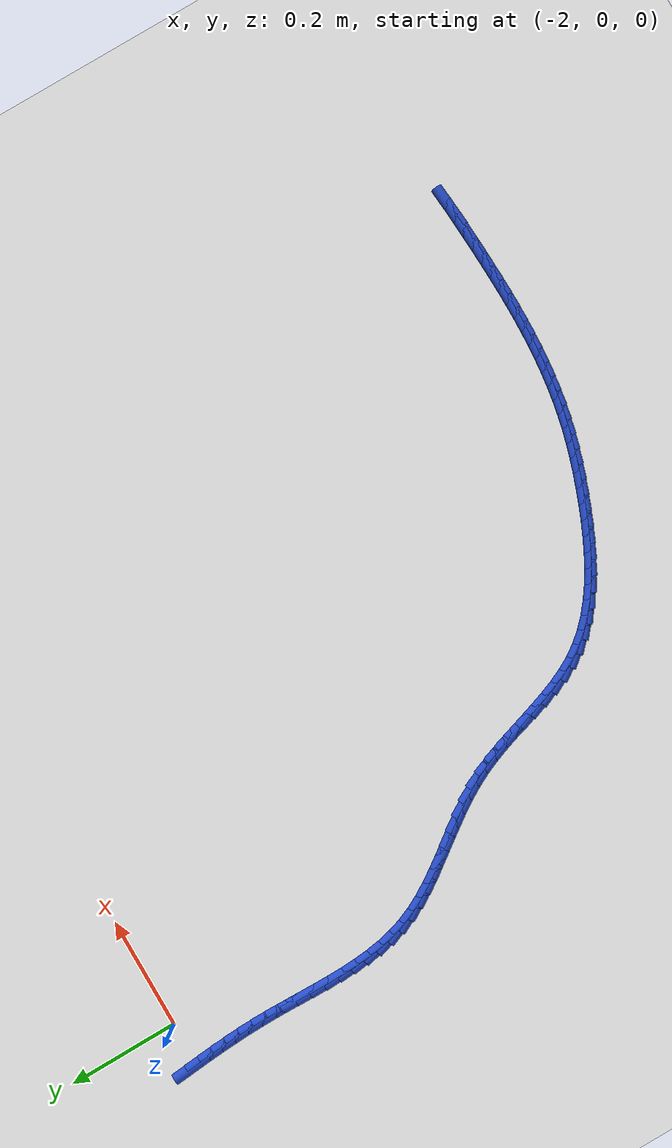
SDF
<sdf version="1.6">
 <world name="default">
  <model name="ground_plane">
   <static>1</static>
   <link name="link">
    <collision name="collision">
     <geometry><plane><normal>0 0 1</normal><size>100 100</size></plane></geometry>
     <surface><friction><ode><mu>100</mu><mu2>50</mu2></ode></friction></surface>
    </collision>
    <visual name="visual">
     <cast_shadows>0</cast_shadows>
     <geometry><plane><normal>0 0 1</normal><size>100 100</size></plane></geometry>
     <material>
      <script><uri>file://media/materials/scripts/gazebo.material</uri><name>Gazebo/WhiteGlow</name></script>
     </material>
    </visual>
   </link>
  </model>
  <model name="line">
   <link name="link_138">
    <pose>-2.076259799934996 0.004023379701810648 0.01 0 1.57 -1.4767754231613457</pose>
    <collision name="collision">
     <geometry><cylinder><radius>0.01</radius><length>0.08</length></cylinder></geometry>
    </collision>
    <visual name="visual">
     <material>
      <script><name>Gazebo/Blue</name><uri>file://media/materials/scripts/gazebo.material</uri></script>
     </material>
     <geometry><cylinder><radius>0.01</radius><length>0.08</length></cylinder></geometry>
    </visual>
   </link>
   <link name="link_139">
    <pose>-2.073760933154093 -0.022476037684811347 0.01 0 1.57 -1.4904226755646686</pose>
    <collision name="collision">
     <geometry><cylinder><radius>0.01</radius><length>0.08</length></cylinder></geometry>
    </collision>
    <visual name="visual">
     <material>
      <script><name>Gazebo/Blue</name><uri>file://media/materials/scripts/gazebo.material</uri></script>
     </material>
     <geometry><cylinder><radius>0.01</radius><length>0.08</length></cylinder></geometry>
    </visual>
   </link>
   <link name="link_140">
    <pose>-2.0716176636199 -0.04908491252600503 0.01 0 1.57 -1.506000891469629</pose>
    <collision name="collision">
     <geometry><cylinder><radius>0.01</radius><length>0.08</length></cylinder></geometry>
    </collision>
    <visual name="visual">
     <material>
      <script><name>Gazebo/Blue</name><uri>file://media/materials/scripts/gazebo.material</uri></script>
     </material>
     <geometry><cylinder><radius>0.01</radius><length>0.08</length></cylinder></geometry>
    </visual>
   </link>
   <link name="link_141">
    <pose>-2.069882461090363 -0.07582712754088738 0.01 0 1.57 -1.5234454125371815</pose>
    <collision name="collision">
     <geometry><cylinder><radius>0.01</radius><length>0.08</length></cylinder></geometry>
    </collision>
    <visual name="visual">
     <material>
      <script><name>Gazebo/Blue</name><uri>file://media/materials/scripts/gazebo.material</uri></script>
     </material>
     <geometry><cylinder><radius>0.01</radius><length>0.08</length></cylinder></geometry>
    </visual>
   </link>
   <link name="link_142">
    <pose>-2.0686077953234254 -0.10272656544857289 0.01 0 1.57 -1.5426780394721202</pose>
    <collision name="collision">
     <geometry><cylinder><radius>0.01</radius><length>0.08</length></cylinder></geometry>
    </collision>
    <visual name="visual">
     <material>
      <script><name>Gazebo/Blue</name><uri>file://media/materials/scripts/gazebo.material</uri></script>
     </material>
     <geometry><cylinder><radius>0.01</radius><length>0.08</length></cylinder></geometry>
    </visual>
   </link>
   <link name="link_143">
    <pose>-2.0678461360770344 -0.12980710896817943 0.01 0 1.57 -1.563581900552866</pose>
    <collision name="collision">
     <geometry><cylinder><radius>0.01</radius><length>0.08</length></cylinder></geometry>
    </collision>
    <visual name="visual">
     <material>
      <script><name>Gazebo/Blue</name><uri>file://media/materials/scripts/gazebo.material</uri></script>
     </material>
     <geometry><cylinder><radius>0.01</radius><length>0.08</length></cylinder></geometry>
    </visual>
   </link>
   <link name="link_144">
    <pose>-2.0676492850438253 -0.1570923859067369 0.01 0 1.57 1.559228311620795</pose>
    <collision name="collision">
     <geometry><cylinder><radius>0.01</radius><length>0.08</length></cylinder></geometry>
    </collision>
    <visual name="visual">
     <material>
      <script><name>Gazebo/Blue</name><uri>file://media/materials/scripts/gazebo.material</uri></script>
     </material>
     <geometry><cylinder><radius>0.01</radius><length>0.08</length></cylinder></geometry>
    </visual>
   </link>
   <link name="link_145">
    <pose>-2.0679671275487186 -0.18456713608620515 0.01 0 1.57 1.5500514270253254</pose>
    <collision name="collision">
     <geometry><cylinder><radius>0.01</radius><length>0.08</length></cylinder></geometry>
    </collision>
    <visual name="visual">
     <material>
      <script><name>Gazebo/Blue</name><uri>file://media/materials/scripts/gazebo.material</uri></script>
     </material>
     <geometry><cylinder><radius>0.01</radius><length>0.08</length></cylinder></geometry>
    </visual>
   </link>
   <link name="link_146">
    <pose>-2.068539118898556 -0.21213580604900603 0.01 0 1.57 1.5512184558446882</pose>
    <collision name="collision">
     <geometry><cylinder><radius>0.01</radius><length>0.08</length></cylinder></geometry>
    </collision>
    <visual name="visual">
     <material>
      <script><name>Gazebo/Blue</name><uri>file://media/materials/scripts/gazebo.material</uri></script>
     </material>
     <geometry><cylinder><radius>0.01</radius><length>0.08</length></cylinder></geometry>
    </visual>
   </link>
   <link name="link_147">
    <pose>-2.0690786973635564 -0.239692915079026 0.01 0 1.57 1.5627570208148083</pose>
    <collision name="collision">
     <geometry><cylinder><radius>0.01</radius><length>0.08</length></cylinder></geometry>
    </collision>
    <visual name="visual">
     <material>
      <script><name>Gazebo/Blue</name><uri>file://media/materials/scripts/gazebo.material</uri></script>
     </material>
     <geometry><cylinder><radius>0.01</radius><length>0.08</length></cylinder></geometry>
    </visual>
   </link>
   <link name="link_148">
    <pose>-2.0692993012139427 -0.2671329824601484 0.01 0 1.57 -1.556654462337523</pose>
    <collision name="collision">
     <geometry><cylinder><radius>0.01</radius><length>0.08</length></cylinder></geometry>
    </collision>
    <visual name="visual">
     <material>
      <script><name>Gazebo/Blue</name><uri>file://media/materials/scripts/gazebo.material</uri></script>
     </material>
     <geometry><cylinder><radius>0.01</radius><length>0.08</length></cylinder></geometry>
    </visual>
   </link>
   <link name="link_149">
    <pose>-2.068914368719938 -0.2943505274762596 0.01 0 1.57 -1.5233402648843988</pose>
    <collision name="collision">
     <geometry><cylinder><radius>0.01</radius><length>0.08</length></cylinder></geometry>
    </collision>
    <visual name="visual">
     <material>
      <script><name>Gazebo/Blue</name><uri>file://media/materials/scripts/gazebo.material</uri></script>
     </material>
     <geometry><cylinder><radius>0.01</radius><length>0.08</length></cylinder></geometry>
    </visual>
   </link>
   <link name="link_150">
    <pose>-2.0676373381517617 -0.32124006941124283 0.01 0 1.57 -1.4782400588052715</pose>
    <collision name="collision">
     <geometry><cylinder><radius>0.01</radius><length>0.08</length></cylinder></geometry>
    </collision>
    <visual name="visual">
     <material>
      <script><name>Gazebo/Blue</name><uri>file://media/materials/scripts/gazebo.material</uri></script>
     </material>
     <geometry><cylinder><radius>0.01</radius><length>0.08</length></cylinder></geometry>
    </visual>
   </link>
   <link name="link_151">
    <pose>-2.0651816477796383 -0.347696127548984 0.01 0 1.57 -1.4206482182835092</pose>
    <collision name="collision">
     <geometry><cylinder><radius>0.01</radius><length>0.08</length></cylinder></geometry>
    </collision>
    <visual name="visual">
     <material>
      <script><name>Gazebo/Blue</name><uri>file://media/materials/scripts/gazebo.material</uri></script>
     </material>
     <geometry><cylinder><radius>0.01</radius><length>0.08</length></cylinder></geometry>
    </visual>
   </link>
   <link name="link_152">
    <pose>-2.0612607358737867 -0.3736132211733683 0.01 0 1.57 -1.349996055068403</pose>
    <collision name="collision">
     <geometry><cylinder><radius>0.01</radius><length>0.08</length></cylinder></geometry>
    </collision>
    <visual name="visual">
     <material>
      <script><name>Gazebo/Blue</name><uri>file://media/materials/scripts/gazebo.material</uri></script>
     </material>
     <geometry><cylinder><radius>0.01</radius><length>0.08</length></cylinder></geometry>
    </visual>
   </link>
   <link name="link_153">
    <pose>-2.0555880407044316 -0.3988858695682795 0.01 0 1.57 -1.2661407544521237</pose>
    <collision name="collision">
     <geometry><cylinder><radius>0.01</radius><length>0.08</length></cylinder></geometry>
    </collision>
    <visual name="visual">
     <material>
      <script><name>Gazebo/Blue</name><uri>file://media/materials/scripts/gazebo.material</uri></script>
     </material>
     <geometry><cylinder><radius>0.01</radius><length>0.08</length></cylinder></geometry>
    </visual>
   </link>
   <link name="link_154">
    <pose>-2.0478770005417926 -0.4234085920176037 0.01 0 1.57 -1.1730826903004319</pose>
    <collision name="collision">
     <geometry><cylinder><radius>0.01</radius><length>0.08</length></cylinder></geometry>
    </collision>
    <visual name="visual">
     <material>
      <script><name>Gazebo/Blue</name><uri>file://media/materials/scripts/gazebo.material</uri></script>
     </material>
     <geometry><cylinder><radius>0.01</radius><length>0.08</length></cylinder></geometry>
    </visual>
   </link>
   <link name="link_155">
    <pose>-2.037920787327878 -0.4471081761362897 0.01 0 1.57 -1.090872453612525</pose>
    <collision name="collision">
     <geometry><cylinder><radius>0.01</radius><length>0.08</length></cylinder></geometry>
    </collision>
    <visual name="visual">
     <material>
      <script><name>Gazebo/Blue</name><uri>file://media/materials/scripts/gazebo.material</uri></script>
     </material>
     <geometry><cylinder><radius>0.01</radius><length>0.08</length></cylinder></geometry>
    </visual>
   </link>
   <link name="link_156">
    <pose>-2.02595763048421 -0.470091524938099 0.01 0 1.57 -1.0265961679334317</pose>
    <collision name="collision">
     <geometry><cylinder><radius>0.01</radius><length>0.08</length></cylinder></geometry>
    </collision>
    <visual name="visual">
     <material>
      <script><name>Gazebo/Blue</name><uri>file://media/materials/scripts/gazebo.material</uri></script>
     </material>
     <geometry><cylinder><radius>0.01</radius><length>0.08</length></cylinder></geometry>
    </visual>
   </link>
   <link name="link_157">
    <pose>-2.0123801153419576 -0.4925280094942964 0.01 0 1.57 -0.9798775052613213</pose>
    <collision name="collision">
     <geometry><cylinder><radius>0.01</radius><length>0.08</length></cylinder></geometry>
    </collision>
    <visual name="visual">
     <material>
      <script><name>Gazebo/Blue</name><uri>file://media/materials/scripts/gazebo.material</uri></script>
     </material>
     <geometry><cylinder><radius>0.01</radius><length>0.08</length></cylinder></geometry>
    </visual>
   </link>
   <link name="link_158">
    <pose>-1.9975809791561334 -0.5145870623599479 0.01 0 1.57 -0.9499372662082303</pose>
    <collision name="collision">
     <geometry><cylinder><radius>0.01</radius><length>0.08</length></cylinder></geometry>
    </collision>
    <visual name="visual">
     <material>
      <script><name>Gazebo/Blue</name><uri>file://media/materials/scripts/gazebo.material</uri></script>
     </material>
     <geometry><cylinder><radius>0.01</radius><length>0.08</length></cylinder></geometry>
    </visual>
   </link>
   <link name="link_159">
    <pose>-1.9819529591817526 -0.5364381160901169 0.01 0 1.57 -0.9360130573496491</pose>
    <collision name="collision">
     <geometry><cylinder><radius>0.01</radius><length>0.08</length></cylinder></geometry>
    </collision>
    <visual name="visual">
     <material>
      <script><name>Gazebo/Blue</name><uri>file://media/materials/scripts/gazebo.material</uri></script>
     </material>
     <geometry><cylinder><radius>0.01</radius><length>0.08</length></cylinder></geometry>
    </visual>
   </link>
   <link name="link_160">
    <pose>-1.9658887926738287 -0.5582506032398686 0.01 0 1.57 -0.9375799099516665</pose>
    <collision name="collision">
     <geometry><cylinder><radius>0.01</radius><length>0.08</length></cylinder></geometry>
    </collision>
    <visual name="visual">
     <material>
      <script><name>Gazebo/Blue</name><uri>file://media/materials/scripts/gazebo.material</uri></script>
     </material>
     <geometry><cylinder><radius>0.01</radius><length>0.08</length></cylinder></geometry>
    </visual>
   </link>
   <link name="link_161">
    <pose>-1.9497812168873758 -0.5801939563642684 0.01 0 1.57 -0.9544297041282365</pose>
    <collision name="collision">
     <geometry><cylinder><radius>0.01</radius><length>0.08</length></cylinder></geometry>
    </collision>
    <visual name="visual">
     <material>
      <script><name>Gazebo/Blue</name><uri>file://media/materials/scripts/gazebo.material</uri></script>
     </material>
     <geometry><cylinder><radius>0.01</radius><length>0.08</length></cylinder></geometry>
    </visual>
   </link>
   <link name="link_162">
    <pose>-1.93402296907741 -0.6024376080183801 0.01 0 1.57 -0.9866462870473095</pose>
    <collision name="collision">
     <geometry><cylinder><radius>0.01</radius><length>0.08</length></cylinder></geometry>
    </collision>
    <visual name="visual">
     <material>
      <script><name>Gazebo/Blue</name><uri>file://media/materials/scripts/gazebo.material</uri></script>
     </material>
     <geometry><cylinder><radius>0.01</radius><length>0.08</length></cylinder></geometry>
    </visual>
   </link>
   <link name="link_163">
    <pose>-1.9190067864989435 -0.6251509907572691 0.01 0 1.57 -1.0344848239045494</pose>
    <collision name="collision">
     <geometry><cylinder><radius>0.01</radius><length>0.08</length></cylinder></geometry>
    </collision>
    <visual name="visual">
     <material>
      <script><name>Gazebo/Blue</name><uri>file://media/materials/scripts/gazebo.material</uri></script>
     </material>
     <geometry><cylinder><radius>0.01</radius><length>0.08</length></cylinder></geometry>
    </visual>
   </link>
   <link name="link_164">
    <pose>-1.905125406406992 -0.6485035371359991 0.01 0 1.57 -1.097967754665865</pose>
    <collision name="collision">
     <geometry><cylinder><radius>0.01</radius><length>0.08</length></cylinder></geometry>
    </collision>
    <visual name="visual">
     <material>
      <script><name>Gazebo/Blue</name><uri>file://media/materials/scripts/gazebo.material</uri></script>
     </material>
     <geometry><cylinder><radius>0.01</radius><length>0.08</length></cylinder></geometry>
    </visual>
   </link>
   <link name="link_165">
    <pose>-1.8927673856712752 -0.6726624993401217 0.01 0 1.57 -1.1648814855146463</pose>
    <collision name="collision">
     <geometry><cylinder><radius>0.01</radius><length>0.08</length></cylinder></geometry>
    </collision>
    <visual name="visual">
     <material>
      <script><name>Gazebo/Blue</name><uri>file://media/materials/scripts/gazebo.material</uri></script>
     </material>
     <geometry><cylinder><radius>0.01</radius><length>0.08</length></cylinder></geometry>
    </visual>
   </link>
   <link name="link_166">
    <pose>-1.8820309024127821 -0.6976436762974406 0.01 0 1.57 -1.2153965091191659</pose>
    <collision name="collision">
     <geometry><cylinder><radius>0.01</radius><length>0.08</length></cylinder></geometry>
    </collision>
    <visual name="visual">
     <material>
      <script><name>Gazebo/Blue</name><uri>file://media/materials/scripts/gazebo.material</uri></script>
     </material>
     <geometry><cylinder><radius>0.01</radius><length>0.08</length></cylinder></geometry>
    </visual>
   </link>
   <link name="link_167">
    <pose>-1.8725396972834891 -0.7232154139090118 0.01 0 1.57 -1.2480022602974223</pose>
    <collision name="collision">
     <geometry><cylinder><radius>0.01</radius><length>0.08</length></cylinder></geometry>
    </collision>
    <visual name="visual">
     <material>
      <script><name>Gazebo/Blue</name><uri>file://media/materials/scripts/gazebo.material</uri></script>
     </material>
     <geometry><cylinder><radius>0.01</radius><length>0.08</length></cylinder></geometry>
    </visual>
   </link>
   <link name="link_168">
    <pose>-1.8638737141451063 -0.7491232149215807 0.01 0 1.57 -1.2630415004622362</pose>
    <collision name="collision">
     <geometry><cylinder><radius>0.01</radius><length>0.08</length></cylinder></geometry>
    </collision>
    <visual name="visual">
     <material>
      <script><name>Gazebo/Blue</name><uri>file://media/materials/scripts/gazebo.material</uri></script>
     </material>
     <geometry><cylinder><radius>0.01</radius><length>0.08</length></cylinder></geometry>
    </visual>
   </link>
   <link name="link_169">
    <pose>-1.8556128968593428 -0.7751125820818959 0.01 0 1.57 -1.2605858043857894</pose>
    <collision name="collision">
     <geometry><cylinder><radius>0.01</radius><length>0.08</length></cylinder></geometry>
    </collision>
    <visual name="visual">
     <material>
      <script><name>Gazebo/Blue</name><uri>file://media/materials/scripts/gazebo.material</uri></script>
     </material>
     <geometry><cylinder><radius>0.01</radius><length>0.08</length></cylinder></geometry>
    </visual>
   </link>
   <link name="link_170">
    <pose>-1.8473371892879085 -0.8009290181367029 0.01 0 1.57 -1.2402927605145424</pose>
    <collision name="collision">
     <geometry><cylinder><radius>0.01</radius><length>0.08</length></cylinder></geometry>
    </collision>
    <visual name="visual">
     <material>
      <script><name>Gazebo/Blue</name><uri>file://media/materials/scripts/gazebo.material</uri></script>
     </material>
     <geometry><cylinder><radius>0.01</radius><length>0.08</length></cylinder></geometry>
    </visual>
   </link>
   <link name="link_171">
    <pose>-1.838626535292513 -0.82631802583275 0.01 0 1.57 -1.2014054784160617</pose>
    <collision name="collision">
     <geometry><cylinder><radius>0.01</radius><length>0.08</length></cylinder></geometry>
    </collision>
    <visual name="visual">
     <material>
      <script><name>Gazebo/Blue</name><uri>file://media/materials/scripts/gazebo.material</uri></script>
     </material>
     <geometry><cylinder><radius>0.01</radius><length>0.08</length></cylinder></geometry>
    </visual>
   </link>
   <link name="link_172">
    <pose>-1.829060878734865 -0.8510251079167845 0.01 0 1.57 -1.1429189270973426</pose>
    <collision name="collision">
     <geometry><cylinder><radius>0.01</radius><length>0.08</length></cylinder></geometry>
    </collision>
    <visual name="visual">
     <material>
      <script><name>Gazebo/Blue</name><uri>file://media/materials/scripts/gazebo.material</uri></script>
     </material>
     <geometry><cylinder><radius>0.01</radius><length>0.08</length></cylinder></geometry>
    </visual>
   </link>
   <link name="link_173">
    <pose>-1.818220163476675 -0.8747957671355522 0.01 0 1.57 -1.0639844923634982</pose>
    <collision name="collision">
     <geometry><cylinder><radius>0.01</radius><length>0.08</length></cylinder></geometry>
    </collision>
    <visual name="visual">
     <material>
      <script><name>Gazebo/Blue</name><uri>file://media/materials/scripts/gazebo.material</uri></script>
     </material>
     <geometry><cylinder><radius>0.01</radius><length>0.08</length></cylinder></geometry>
    </visual>
   </link>
   <link name="link_174">
    <pose>-1.8056843333796522 -0.8973755062358018 0.01 0 1.57 -0.9650397179757746</pose>
    <collision name="collision">
     <geometry><cylinder><radius>0.01</radius><length>0.08</length></cylinder></geometry>
    </collision>
    <visual name="visual">
     <material>
      <script><name>Gazebo/Blue</name><uri>file://media/materials/scripts/gazebo.material</uri></script>
     </material>
     <geometry><cylinder><radius>0.01</radius><length>0.08</length></cylinder></geometry>
    </visual>
   </link>
   <link name="link_175">
    <pose>-1.7910428478830906 -0.9185147437953559 0.01 0 1.57 -0.8604326534677889</pose>
    <collision name="collision">
     <geometry><cylinder><radius>0.01</radius><length>0.08</length></cylinder></geometry>
    </collision>
    <visual name="visual">
     <material>
      <script><name>Gazebo/Blue</name><uri>file://media/materials/scripts/gazebo.material</uri></script>
     </material>
     <geometry><cylinder><radius>0.01</radius><length>0.08</length></cylinder></geometry>
    </visual>
   </link>
   <link name="link_176">
    <pose>-1.774181679061713 -0.9381170794275614 0.01 0 1.57 -0.7665069074295492</pose>
    <collision name="collision">
     <geometry><cylinder><radius>0.01</radius><length>0.08</length></cylinder></geometry>
    </collision>
    <visual name="visual">
     <material>
      <script><name>Gazebo/Blue</name><uri>file://media/materials/scripts/gazebo.material</uri></script>
     </material>
     <geometry><cylinder><radius>0.01</radius><length>0.08</length></cylinder></geometry>
    </visual>
   </link>
   <link name="link_177">
    <pose>-1.7553341944227463 -0.9562655802818062 0.01 0 1.57 -0.6842499015778614</pose>
    <collision name="collision">
     <geometry><cylinder><radius>0.01</radius><length>0.08</length></cylinder></geometry>
    </collision>
    <visual name="visual">
     <material>
      <script><name>Gazebo/Blue</name><uri>file://media/materials/scripts/gazebo.material</uri></script>
     </material>
     <geometry><cylinder><radius>0.01</radius><length>0.08</length></cylinder></geometry>
    </visual>
   </link>
   <link name="link_178">
    <pose>-1.7347535336929651 -0.9730535280100122 0.01 0 1.57 -0.6131006868375701</pose>
    <collision name="collision">
     <geometry><cylinder><radius>0.01</radius><length>0.08</length></cylinder></geometry>
    </collision>
    <visual name="visual">
     <material>
      <script><name>Gazebo/Blue</name><uri>file://media/materials/scripts/gazebo.material</uri></script>
     </material>
     <geometry><cylinder><radius>0.01</radius><length>0.08</length></cylinder></geometry>
    </visual>
   </link>
   <link name="link_179">
    <pose>-1.7126928365991447 -0.9885742042640977 0.01 0 1.57 -0.5521487974258346</pose>
    <collision name="collision">
     <geometry><cylinder><radius>0.01</radius><length>0.08</length></cylinder></geometry>
    </collision>
    <visual name="visual">
     <material>
      <script><name>Gazebo/Blue</name><uri>file://media/materials/scripts/gazebo.material</uri></script>
     </material>
     <geometry><cylinder><radius>0.01</radius><length>0.08</length></cylinder></geometry>
    </visual>
   </link>
   <link name="link_180">
    <pose>-1.6894052428680588 -1.0029208906959841 0.01 0 1.57 -0.5003790077397935</pose>
    <collision name="collision">
     <geometry><cylinder><radius>0.01</radius><length>0.08</length></cylinder></geometry>
    </collision>
    <visual name="visual">
     <material>
      <script><name>Gazebo/Blue</name><uri>file://media/materials/scripts/gazebo.material</uri></script>
     </material>
     <geometry><cylinder><radius>0.01</radius><length>0.08</length></cylinder></geometry>
    </visual>
   </link>
   <link name="link_181">
    <pose>-1.6651438922264836 -1.0161868689575906 0.01 0 1.57 -0.4568217612863103</pose>
    <collision name="collision">
     <geometry><cylinder><radius>0.01</radius><length>0.08</length></cylinder></geometry>
    </collision>
    <visual name="visual">
     <material>
      <script><name>Gazebo/Blue</name><uri>file://media/materials/scripts/gazebo.material</uri></script>
     </material>
     <geometry><cylinder><radius>0.01</radius><length>0.08</length></cylinder></geometry>
    </visual>
   </link>
   <link name="link_182">
    <pose>-1.6401619244011933 -1.0284654207008375 0.01 0 1.57 -0.42063482243608613</pose>
    <collision name="collision">
     <geometry><cylinder><radius>0.01</radius><length>0.08</length></cylinder></geometry>
    </collision>
    <visual name="visual">
     <material>
      <script><name>Gazebo/Blue</name><uri>file://media/materials/scripts/gazebo.material</uri></script>
     </material>
     <geometry><cylinder><radius>0.01</radius><length>0.08</length></cylinder></geometry>
    </visual>
   </link>
   <link name="link_183">
    <pose>-1.6147124791189618 -1.0398498275776455 0.01 0 1.57 -0.39114344203533613</pose>
    <collision name="collision">
     <geometry><cylinder><radius>0.01</radius><length>0.08</length></cylinder></geometry>
    </collision>
    <visual name="visual">
     <material>
      <script><name>Gazebo/Blue</name><uri>file://media/materials/scripts/gazebo.material</uri></script>
     </material>
     <geometry><cylinder><radius>0.01</radius><length>0.08</length></cylinder></geometry>
    </visual>
   </link>
   <link name="link_184">
    <pose>-1.5890486961065655 -1.0504333712399334 0.01 0 1.57 -0.36765621249563935</pose>
    <collision name="collision">
     <geometry><cylinder><radius>0.01</radius><length>0.08</length></cylinder></geometry>
    </collision>
    <visual name="visual">
     <material>
      <script><name>Gazebo/Blue</name><uri>file://media/materials/scripts/gazebo.material</uri></script>
     </material>
     <geometry><cylinder><radius>0.01</radius><length>0.08</length></cylinder></geometry>
    </visual>
   </link>
   <link name="link_185">
    <pose>-1.5634168506787902 -1.0603059692500187 0.01 0 1.57 -0.3454946244019782</pose>
    <collision name="collision">
     <geometry><cylinder><radius>0.01</radius><length>0.08</length></cylinder></geometry>
    </collision>
    <visual name="visual">
     <material>
      <script><name>Gazebo/Blue</name><uri>file://media/materials/scripts/gazebo.material</uri></script>
     </material>
     <geometry><cylinder><radius>0.01</radius><length>0.08</length></cylinder></geometry>
    </visual>
   </link>
   <link name="link_186">
    <pose>-1.537914974933526 -1.0694848885971215 0.01 0 1.57 -0.32033601633163644</pose>
    <collision name="collision">
     <geometry><cylinder><radius>0.01</radius><length>0.08</length></cylinder></geometry>
    </collision>
    <visual name="visual">
     <material>
      <script><name>Gazebo/Blue</name><uri>file://media/materials/scripts/gazebo.material</uri></script>
     </material>
     <geometry><cylinder><radius>0.01</radius><length>0.08</length></cylinder></geometry>
    </visual>
   </link>
   <link name="link_187">
    <pose>-1.5124980225030509 -1.0779172768225642 0.01 0 1.57 -0.29200879810683117</pose>
    <collision name="collision">
     <geometry><cylinder><radius>0.01</radius><length>0.08</length></cylinder></geometry>
    </collision>
    <visual name="visual">
     <material>
      <script><name>Gazebo/Blue</name><uri>file://media/materials/scripts/gazebo.material</uri></script>
     </material>
     <geometry><cylinder><radius>0.01</radius><length>0.08</length></cylinder></geometry>
    </visual>
   </link>
   <link name="link_188">
    <pose>-1.4871151159651221 -1.0855474238026637 0.01 0 1.57 -0.26056313985094354</pose>
    <collision name="collision">
     <geometry><cylinder><radius>0.01</radius><length>0.08</length></cylinder></geometry>
    </collision>
    <visual name="visual">
     <material>
      <script><name>Gazebo/Blue</name><uri>file://media/materials/scripts/gazebo.material</uri></script>
     </material>
     <geometry><cylinder><radius>0.01</radius><length>0.08</length></cylinder></geometry>
    </visual>
   </link>
   <link name="link_189">
    <pose>-1.4617153778974927 -1.0923196194137383 0.01 0 1.57 -0.2263758207441335</pose>
    <collision name="collision">
     <geometry><cylinder><radius>0.01</radius><length>0.08</length></cylinder></geometry>
    </collision>
    <visual name="visual">
     <material>
      <script><name>Gazebo/Blue</name><uri>file://media/materials/scripts/gazebo.material</uri></script>
     </material>
     <geometry><cylinder><radius>0.01</radius><length>0.08</length></cylinder></geometry>
    </visual>
   </link>
   <link name="link_190">
    <pose>-1.4362499301187037 -1.0981849160481498 0.01 0 1.57 -0.1922643394911531</pose>
    <collision name="collision">
     <geometry><cylinder><radius>0.01</radius><length>0.08</length></cylinder></geometry>
    </collision>
    <visual name="visual">
     <material>
      <script><name>Gazebo/Blue</name><uri>file://media/materials/scripts/gazebo.material</uri></script>
     </material>
     <geometry><cylinder><radius>0.01</radius><length>0.08</length></cylinder></geometry>
    </visual>
   </link>
   <link name="link_191">
    <pose>-1.410689515532645 -1.1031607352447903 0.01 0 1.57 -0.15993269690067916</pose>
    <collision name="collision">
     <geometry><cylinder><radius>0.01</radius><length>0.08</length></cylinder></geometry>
    </collision>
    <visual name="visual">
     <material>
      <script><name>Gazebo/Blue</name><uri>file://media/materials/scripts/gazebo.material</uri></script>
     </material>
     <geometry><cylinder><radius>0.01</radius><length>0.08</length></cylinder></geometry>
    </visual>
   </link>
   <link name="link_192">
    <pose>-1.3850160050895193 -1.1073021396272635 0.01 0 1.57 -0.12957544668434282</pose>
    <collision name="collision">
     <geometry><cylinder><radius>0.01</radius><length>0.08</length></cylinder></geometry>
    </collision>
    <visual name="visual">
     <material>
      <script><name>Gazebo/Blue</name><uri>file://media/materials/scripts/gazebo.material</uri></script>
     </material>
     <geometry><cylinder><radius>0.01</radius><length>0.08</length></cylinder></geometry>
    </visual>
   </link>
   <link name="link_193">
    <pose>-1.3592113971511206 -1.1106646227942576 0.01 0 1.57 -0.10133489126007922</pose>
    <collision name="collision">
     <geometry><cylinder><radius>0.01</radius><length>0.08</length></cylinder></geometry>
    </collision>
    <visual name="visual">
     <material>
      <script><name>Gazebo/Blue</name><uri>file://media/materials/scripts/gazebo.material</uri></script>
     </material>
     <geometry><cylinder><radius>0.01</radius><length>0.08</length></cylinder></geometry>
    </visual>
   </link>
   <link name="link_194">
    <pose>-1.3332576900792446 -1.1133036783444608 0.01 0 1.57 -0.07531898613924272</pose>
    <collision name="collision">
     <geometry><cylinder><radius>0.01</radius><length>0.08</length></cylinder></geometry>
    </collision>
    <visual name="visual">
     <material>
      <script><name>Gazebo/Blue</name><uri>file://media/materials/scripts/gazebo.material</uri></script>
     </material>
     <geometry><cylinder><radius>0.01</radius><length>0.08</length></cylinder></geometry>
    </visual>
   </link>
   <link name="link_195">
    <pose>-1.3071368822356886 -1.115274799876562 0.01 0 1.57 -0.05160341797852448</pose>
    <collision name="collision">
     <geometry><cylinder><radius>0.01</radius><length>0.08</length></cylinder></geometry>
    </collision>
    <visual name="visual">
     <material>
      <script><name>Gazebo/Blue</name><uri>file://media/materials/scripts/gazebo.material</uri></script>
     </material>
     <geometry><cylinder><radius>0.01</radius><length>0.08</length></cylinder></geometry>
    </visual>
   </link>
   <link name="link_196">
    <pose>-1.2808309719822477 -1.1166334809892493 0.01 0 1.57 -0.030234620227525086</pose>
    <collision name="collision">
     <geometry><cylinder><radius>0.01</radius><length>0.08</length></cylinder></geometry>
    </collision>
    <visual name="visual">
     <material>
      <script><name>Gazebo/Blue</name><uri>file://media/materials/scripts/gazebo.material</uri></script>
     </material>
     <geometry><cylinder><radius>0.01</radius><length>0.08</length></cylinder></geometry>
    </visual>
   </link>
   <link name="link_197">
    <pose>-1.2543219576807196 -1.1174352152812115 0.01 0 1.57 -0.011233336750763096</pose>
    <collision name="collision">
     <geometry><cylinder><radius>0.01</radius><length>0.08</length></cylinder></geometry>
    </collision>
    <visual name="visual">
     <material>
      <script><name>Gazebo/Blue</name><uri>file://media/materials/scripts/gazebo.material</uri></script>
     </material>
     <geometry><cylinder><radius>0.01</radius><length>0.08</length></cylinder></geometry>
    </visual>
   </link>
   <link name="link_198">
    <pose>-1.2275918376928987 -1.1177354963511372 0.01 0 1.57 0.005401605870848609</pose>
    <collision name="collision">
     <geometry><cylinder><radius>0.01</radius><length>0.08</length></cylinder></geometry>
    </collision>
    <visual name="visual">
     <material>
      <script><name>Gazebo/Blue</name><uri>file://media/materials/scripts/gazebo.material</uri></script>
     </material>
     <geometry><cylinder><radius>0.01</radius><length>0.08</length></cylinder></geometry>
    </visual>
   </link>
   <link name="link_199">
    <pose>-1.2006226103805822 -1.1175898177977142 0.01 0 1.57 0.019689586095445077</pose>
    <collision name="collision">
     <geometry><cylinder><radius>0.01</radius><length>0.08</length></cylinder></geometry>
    </collision>
    <visual name="visual">
     <material>
      <script><name>Gazebo/Blue</name><uri>file://media/materials/scripts/gazebo.material</uri></script>
     </material>
     <geometry><cylinder><radius>0.01</radius><length>0.08</length></cylinder></geometry>
    </visual>
   </link>
   <link name="link_200">
    <pose>-1.1733962741055652 -1.117053673219632 0.01 0 1.57 0.031664728232029885</pose>
    <collision name="collision">
     <geometry><cylinder><radius>0.01</radius><length>0.08</length></cylinder></geometry>
    </collision>
    <visual name="visual">
     <material>
      <script><name>Gazebo/Blue</name><uri>file://media/materials/scripts/gazebo.material</uri></script>
     </material>
     <geometry><cylinder><radius>0.01</radius><length>0.08</length></cylinder></geometry>
    </visual>
   </link>
   <link name="link_201">
    <pose>-1.1458948272296456 -1.116182556215578 0.01 0 1.57 0.041372818907867016</pose>
    <collision name="collision">
     <geometry><cylinder><radius>0.01</radius><length>0.08</length></cylinder></geometry>
    </collision>
    <visual name="visual">
     <material>
      <script><name>Gazebo/Blue</name><uri>file://media/materials/scripts/gazebo.material</uri></script>
     </material>
     <geometry><cylinder><radius>0.01</radius><length>0.08</length></cylinder></geometry>
    </visual>
   </link>
   <link name="link_202">
    <pose>-1.1181002681146175 -1.1150319603842416 0.01 0 1.57 0.048868662655614396</pose>
    <collision name="collision">
     <geometry><cylinder><radius>0.01</radius><length>0.08</length></cylinder></geometry>
    </collision>
    <visual name="visual">
     <material>
      <script><name>Gazebo/Blue</name><uri>file://media/materials/scripts/gazebo.material</uri></script>
     </material>
     <geometry><cylinder><radius>0.01</radius><length>0.08</length></cylinder></geometry>
    </visual>
   </link>
   <link name="link_203">
    <pose>-1.0899945951222785 -1.1136573793243107 0.01 0 1.57 0.05426882678511833</pose>
    <collision name="collision">
     <geometry><cylinder><radius>0.01</radius><length>0.08</length></cylinder></geometry>
    </collision>
    <visual name="visual">
     <material>
      <script><name>Gazebo/Blue</name><uri>file://media/materials/scripts/gazebo.material</uri></script>
     </material>
     <geometry><cylinder><radius>0.01</radius><length>0.08</length></cylinder></geometry>
    </visual>
   </link>
   <link name="link_204">
    <pose>-1.0615609641047175 -1.1121128029164271 0.01 0 1.57 0.06272974556878483</pose>
    <collision name="collision">
     <geometry><cylinder><radius>0.01</radius><length>0.08</length></cylinder></geometry>
    </collision>
    <visual name="visual">
     <material>
      <script><name>Gazebo/Blue</name><uri>file://media/materials/scripts/gazebo.material</uri></script>
     </material>
     <geometry><cylinder><radius>0.01</radius><length>0.08</length></cylinder></geometry>
    </visual>
   </link>
   <link name="link_205">
    <pose>-1.0328905051880992 -1.1103119495714482 0.01 0 1.57 0.08351366193500818</pose>
    <collision name="collision">
     <geometry><cylinder><radius>0.01</radius><length>0.08</length></cylinder></geometry>
    </collision>
    <visual name="visual">
     <material>
      <script><name>Gazebo/Blue</name><uri>file://media/materials/scripts/gazebo.material</uri></script>
     </material>
     <geometry><cylinder><radius>0.01</radius><length>0.08</length></cylinder></geometry>
    </visual>
   </link>
  </model>
 </world>
</sdf>
